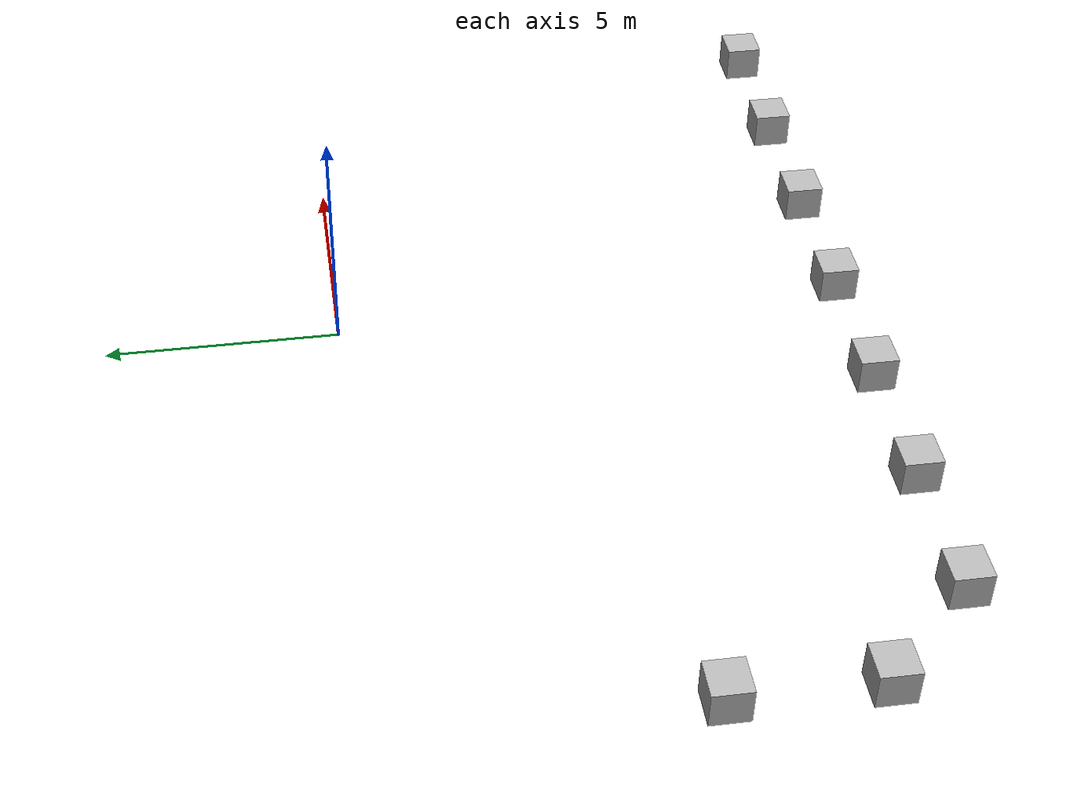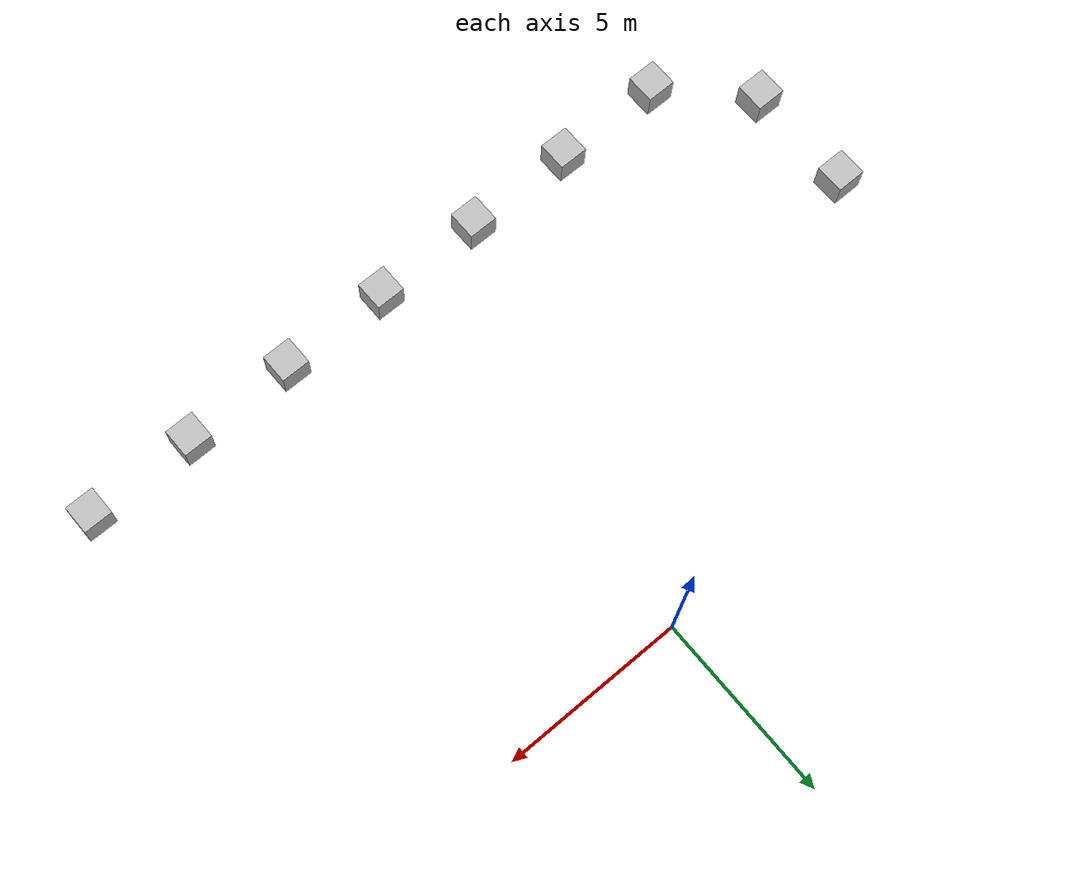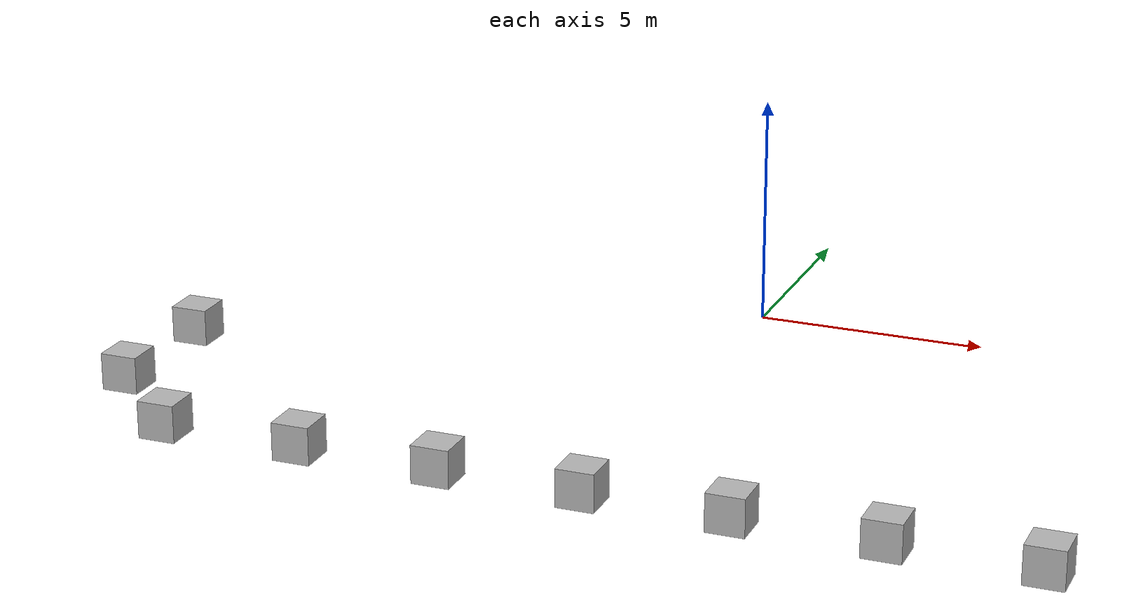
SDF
<sdf version="1.7">
 <world name="default">
  <model name="number1">
   <pose>-11 -9 0.5 0 -0 0</pose>
   <static>1</static>
   <link name="link">
    <visual name="visual">
     <geometry><mesh><uri>model://number1/meshes/number.dae</uri></mesh></geometry>
     <material>
      <script>
       <uri>model://number1/materials/scripts</uri>
       <uri>model://number1/materials/textures</uri>
       <name>Number/One</name>
      </script>
     </material>
    </visual>
   </link>
  </model>
  <model name="number2">
   <pose>-11 -6 0.5 0 -0 0</pose>
   <static>1</static>
   <link name="link">
    <visual name="visual">
     <geometry><mesh><uri>model://number1/meshes/number.dae</uri></mesh></geometry>
     <material>
      <script>
       <uri>model://number2/materials/scripts</uri>
       <uri>model://number2/materials/textures</uri>
       <name>Number/Two</name>
      </script>
     </material>
    </visual>
   </link>
  </model>
  <model name="number1_clone">
   <pose>-9 -11 0.5 0 -0 0</pose>
   <static>1</static>
   <link name="link">
    <visual name="visual">
     <geometry><mesh><uri>model://number1/meshes/number.dae</uri></mesh></geometry>
     <material>
      <script>
       <uri>model://number1/materials/scripts</uri>
       <uri>model://number1/materials/textures</uri>
       <name>Number/One</name>
      </script>
     </material>
    </visual>
   </link>
  </model>
  <model name="number2_clone">
   <pose>-6 -11 0.5 0 -0 0</pose>
   <static>1</static>
   <link name="link">
    <visual name="visual">
     <geometry><mesh><uri>model://number1/meshes/number.dae</uri></mesh></geometry>
     <material>
      <script>
       <uri>model://number2/materials/scripts</uri>
       <uri>model://number2/materials/textures</uri>
       <name>Number/Two</name>
      </script>
     </material>
    </visual>
   </link>
  </model>
  <model name="number3_clone">
   <pose>-3 -11 0.5 0 -0 0</pose>
   <static>1</static>
   <link name="link">
    <visual name="visual">
     <geometry><mesh><uri>model://number1/meshes/number.dae</uri></mesh></geometry>
     <material>
      <script>
       <uri>model://number3/materials/scripts</uri>
       <uri>model://number3/materials/textures</uri>
       <name>Number/Three</name>
      </script>
     </material>
    </visual>
   </link>
  </model>
  <model name="number4_clone">
   <pose>0 -11 0.5 0 -0 0</pose>
   <static>1</static>
   <link name="link">
    <visual name="visual">
     <geometry><mesh><uri>model://number1/meshes/number.dae</uri></mesh></geometry>
     <material>
      <script>
       <uri>model://number4/materials/scripts</uri>
       <uri>model://number4/materials/textures</uri>
       <name>Number/Four</name>
      </script>
     </material>
    </visual>
   </link>
  </model>
  <model name="number5_clone">
   <pose>3 -11 0.5 0 -0 0</pose>
   <static>1</static>
   <link name="link">
    <visual name="visual">
     <geometry><mesh><uri>model://number1/meshes/number.dae</uri></mesh></geometry>
     <material>
      <script>
       <uri>model://number5/materials/scripts</uri>
       <uri>model://number5/materials/textures</uri>
       <name>Number/Five</name>
      </script>
     </material>
    </visual>
   </link>
  </model>
  <model name="number6_clone">
   <pose>6 -11 0.5 0 -0 0</pose>
   <static>1</static>
   <link name="link">
    <visual name="visual">
     <geometry><mesh><uri>model://number1/meshes/number.dae</uri></mesh></geometry>
     <material>
      <script>
       <uri>model://number6/materials/scripts</uri>
       <uri>model://number6/materials/textures</uri>
       <name>Number/Six</name>
      </script>
     </material>
    </visual>
   </link>
  </model>
  <model name="number7">
   <pose>9 -11 0.5 0 -0 0</pose>
   <static>1</static>
   <link name="link">
    <visual name="visual">
     <geometry><mesh><uri>model://number1/meshes/number.dae</uri></mesh></geometry>
     <material>
      <script>
       <uri>model://number7/materials/scripts</uri>
       <uri>model://number7/materials/textures</uri>
       <name>Number/Seven</name>
      </script>
     </material>
    </visual>
   </link>
  </model>
 </world>
</sdf>
